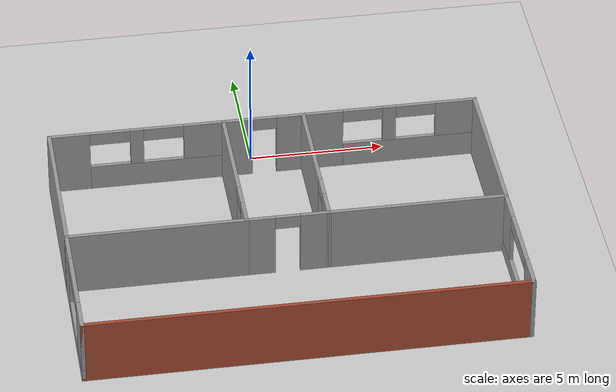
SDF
<sdf version="1.6">
 <world name="default">
  <model name="ground_plane">
   <static>1</static>
   <link name="link">
    <collision name="collision">
     <geometry><plane><normal>0 0 1</normal><size>100 100</size></plane></geometry>
     <surface>
      <contact><collide_bitmask>65535</collide_bitmask></contact>
      <friction><ode><mu>100</mu><mu2>50</mu2></ode></friction>
     </surface>
    </collision>
    <visual name="visual">
     <cast_shadows>0</cast_shadows>
     <geometry><plane><normal>0 0 1</normal><size>100 100</size></plane></geometry>
     <material>
      <script><uri>file://media/materials/scripts/gazebo.material</uri><name>Gazebo/Grey</name></script>
     </material>
    </visual>
   </link>
  </model>
  <model name="Building">
   <pose>0.34481 -6.36801 0 0 -0 0</pose>
   <link name="Wall_11">
    <pose>4.73315 5.49998 0 0 -0 0</pose>
    <visual name="Wall_11_Visual_0">
     <pose>-2.52909 0 1.25 0 -0 0</pose>
     <geometry><box><size>1.59183 0.15 2.5</size></box></geometry>
     <material>
      <script><uri>file://media/materials/scripts/gazebo.material</uri><name>Gazebo/Grey</name></script>
      <ambient>1 1 1 1</ambient>
     </material>
     <meta><layer>0</layer></meta>
    </visual>
    <collision name="Wall_11_Collision_0">
     <geometry><box><size>1.59183 0.15 2.5</size></box></geometry>
     <pose>-2.52909 0 1.25 0 -0 0</pose>
    </collision>
    <visual name="Wall_11_Visual_1">
     <pose>0.795914 0 0.5 0 -0 0</pose>
     <geometry><box><size>5.05817 0.15 1</size></box></geometry>
     <material>
      <script><uri>file://media/materials/scripts/gazebo.material</uri><name>Gazebo/Grey</name></script>
      <ambient>1 1 1 1</ambient>
     </material>
     <meta><layer>0</layer></meta>
    </visual>
    <collision name="Wall_11_Collision_1">
     <geometry><box><size>5.05817 0.15 1</size></box></geometry>
     <pose>0.795914 0 0.5 0 -0 0</pose>
    </collision>
    <visual name="Wall_11_Visual_2">
     <pose>0.018142 0 1.75 0 -0 0</pose>
     <geometry><box><size>0.502627 0.15 1.5</size></box></geometry>
     <material>
      <script><uri>file://media/materials/scripts/gazebo.material</uri><name>Gazebo/Grey</name></script>
      <ambient>1 1 1 1</ambient>
     </material>
     <meta><layer>0</layer></meta>
    </visual>
    <collision name="Wall_11_Collision_2">
     <geometry><box><size>0.502627 0.15 1.5</size></box></geometry>
     <pose>0.018142 0 1.75 0 -0 0</pose>
    </collision>
    <visual name="Wall_11_Visual_3">
     <pose>2.54723 0 1.75 0 -0 0</pose>
     <geometry><box><size>1.55554 0.15 1.5</size></box></geometry>
     <material>
      <script><uri>file://media/materials/scripts/gazebo.material</uri><name>Gazebo/Grey</name></script>
      <ambient>1 1 1 1</ambient>
     </material>
     <meta><layer>0</layer></meta>
    </visual>
    <collision name="Wall_11_Collision_3">
     <geometry><box><size>1.55554 0.15 1.5</size></box></geometry>
     <pose>2.54723 0 1.75 0 -0 0</pose>
    </collision>
    <visual name="Wall_11_Visual_4">
     <pose>-0.983172 0 2.25 0 -0 0</pose>
     <geometry><box><size>1.5 0.15 0.5</size></box></geometry>
     <material>
      <script><uri>file://media/materials/scripts/gazebo.material</uri><name>Gazebo/Grey</name></script>
      <ambient>1 1 1 1</ambient>
     </material>
     <meta><layer>0</layer></meta>
    </visual>
    <collision name="Wall_11_Collision_4">
     <geometry><box><size>1.5 0.15 0.5</size></box></geometry>
     <pose>-0.983172 0 2.25 0 -0 0</pose>
    </collision>
    <visual name="Wall_11_Visual_5">
     <pose>1.01946 0 2.25 0 -0 0</pose>
     <geometry><box><size>1.5 0.15 0.5</size></box></geometry>
     <material>
      <script><uri>file://media/materials/scripts/gazebo.material</uri><name>Gazebo/Grey</name></script>
      <ambient>1 1 1 1</ambient>
     </material>
     <meta><layer>0</layer></meta>
    </visual>
    <collision name="Wall_11_Collision_5">
     <geometry><box><size>1.5 0.15 0.5</size></box></geometry>
     <pose>1.01946 0 2.25 0 -0 0</pose>
    </collision>
   </link>
   <link name="Wall_12">
    <collision name="Wall_12_Collision">
     <geometry><box><size>6.15 0.15 2.5</size></box></geometry>
     <pose>0 0 1.25 0 -0 0</pose>
    </collision>
    <visual name="Wall_12_Visual">
     <pose>0 0 1.25 0 -0 0</pose>
     <geometry><box><size>6.15 0.15 2.5</size></box></geometry>
     <material>
      <script><uri>file://media/materials/scripts/gazebo.material</uri><name>Gazebo/Grey</name></script>
      <ambient>1 1 1 1</ambient>
     </material>
     <meta><layer>0</layer></meta>
    </visual>
    <pose>7.99829 2.49998 0 0 0 -1.57023</pose>
   </link>
   <link name="Wall_13">
    <collision name="Wall_13_Collision">
     <geometry><box><size>6.65 0.15 2.5</size></box></geometry>
     <pose>0 0 1.25 0 -0 0</pose>
    </collision>
    <visual name="Wall_13_Visual">
     <pose>0 0 1.25 0 -0 0</pose>
     <geometry><box><size>6.65 0.15 2.5</size></box></geometry>
     <material>
      <script><uri>file://media/materials/scripts/gazebo.material</uri><name>Gazebo/Grey</name></script>
      <ambient>1 1 1 1</ambient>
     </material>
     <meta><layer>0</layer></meta>
    </visual>
    <pose>4.74998 -0.500021 0 0 -0 3.14159</pose>
   </link>
   <link name="Wall_15">
    <pose>-8.00002 -3.00002 0 0 0 -1.5708</pose>
    <visual name="Wall_15_Visual_0">
     <pose>-1.9125 0 1.25 0 -0 0</pose>
     <geometry><box><size>1.325 0.15 2.5</size></box></geometry>
     <material>
      <script><uri>file://media/materials/scripts/gazebo.material</uri><name>Gazebo/Grey</name></script>
      <ambient>1 1 1 1</ambient>
     </material>
     <meta><layer>0</layer></meta>
    </visual>
    <collision name="Wall_15_Collision_0">
     <geometry><box><size>1.325 0.15 2.5</size></box></geometry>
     <pose>-1.9125 0 1.25 0 -0 0</pose>
    </collision>
    <visual name="Wall_15_Visual_1">
     <pose>0.6625 0 0.25 0 -0 0</pose>
     <geometry><box><size>3.825 0.15 0.5</size></box></geometry>
     <material>
      <script><uri>file://media/materials/scripts/gazebo.material</uri><name>Gazebo/Grey</name></script>
      <ambient>1 1 1 1</ambient>
     </material>
     <meta><layer>0</layer></meta>
    </visual>
    <collision name="Wall_15_Collision_1">
     <geometry><box><size>3.825 0.15 0.5</size></box></geometry>
     <pose>0.6625 0 0.25 0 -0 0</pose>
    </collision>
    <visual name="Wall_15_Visual_2">
     <pose>1.9125 0 1.5 0 -0 0</pose>
     <geometry><box><size>1.325 0.15 2</size></box></geometry>
     <material>
      <script><uri>file://media/materials/scripts/gazebo.material</uri><name>Gazebo/Grey</name></script>
      <ambient>1 1 1 1</ambient>
     </material>
     <meta><layer>0</layer></meta>
    </visual>
    <collision name="Wall_15_Collision_2">
     <geometry><box><size>1.325 0.15 2</size></box></geometry>
     <pose>1.9125 0 1.5 0 -0 0</pose>
    </collision>
    <visual name="Wall_15_Visual_3">
     <pose>0 0 2.25 0 -0 0</pose>
     <geometry><box><size>2.5 0.15 0.5</size></box></geometry>
     <material>
      <script><uri>file://media/materials/scripts/gazebo.material</uri><name>Gazebo/Grey</name></script>
      <ambient>1 1 1 1</ambient>
     </material>
     <meta><layer>0</layer></meta>
    </visual>
    <collision name="Wall_15_Collision_3">
     <geometry><box><size>2.5 0.15 0.5</size></box></geometry>
     <pose>0 0 2.25 0 -0 0</pose>
    </collision>
   </link>
   <link name="Wall_16">
    <collision name="Wall_16_Collision">
     <geometry><box><size>16.15 0.15 2.5</size></box></geometry>
     <pose>0 0 1.25 0 -0 0</pose>
    </collision>
    <visual name="Wall_16_Visual">
     <pose>0 0 1.25 0 -0 0</pose>
     <geometry><box><size>16.15 0.15 2.5</size></box></geometry>
     <material>
      <script><uri>file://media/materials/scripts/gazebo.material</uri><name>Gazebo/Bricks</name></script>
      <ambient>1 1 1 1</ambient>
     </material>
     <meta><layer>0</layer></meta>
    </visual>
    <pose>-2.1e-05 -5.50002 0 0 -0 0</pose>
   </link>
   <link name="Wall_17">
    <pose>7.99998 -3.00002 0 0 -0 1.5708</pose>
    <visual name="Wall_17_Visual_0">
     <pose>-1.9125 0 1.25 0 -0 0</pose>
     <geometry><box><size>1.325 0.15 2.5</size></box></geometry>
     <material>
      <script><uri>file://media/materials/scripts/gazebo.material</uri><name>Gazebo/Grey</name></script>
      <ambient>1 1 1 1</ambient>
     </material>
     <meta><layer>0</layer></meta>
    </visual>
    <collision name="Wall_17_Collision_0">
     <geometry><box><size>1.325 0.15 2.5</size></box></geometry>
     <pose>-1.9125 0 1.25 0 -0 0</pose>
    </collision>
    <visual name="Wall_17_Visual_1">
     <pose>0.6625 0 0.25 0 -0 0</pose>
     <geometry><box><size>3.825 0.15 0.5</size></box></geometry>
     <material>
      <script><uri>file://media/materials/scripts/gazebo.material</uri><name>Gazebo/Grey</name></script>
      <ambient>1 1 1 1</ambient>
     </material>
     <meta><layer>0</layer></meta>
    </visual>
    <collision name="Wall_17_Collision_1">
     <geometry><box><size>3.825 0.15 0.5</size></box></geometry>
     <pose>0.6625 0 0.25 0 -0 0</pose>
    </collision>
    <visual name="Wall_17_Visual_2">
     <pose>1.9125 0 1.5 0 -0 0</pose>
     <geometry><box><size>1.325 0.15 2</size></box></geometry>
     <material>
      <script><uri>file://media/materials/scripts/gazebo.material</uri><name>Gazebo/Grey</name></script>
      <ambient>1 1 1 1</ambient>
     </material>
     <meta><layer>0</layer></meta>
    </visual>
    <collision name="Wall_17_Collision_2">
     <geometry><box><size>1.325 0.15 2</size></box></geometry>
     <pose>1.9125 0 1.5 0 -0 0</pose>
    </collision>
    <visual name="Wall_17_Visual_3">
     <pose>0 0 2.25 0 -0 0</pose>
     <geometry><box><size>2.5 0.15 0.5</size></box></geometry>
     <material>
      <script><uri>file://media/materials/scripts/gazebo.material</uri><name>Gazebo/Grey</name></script>
      <ambient>1 1 1 1</ambient>
     </material>
     <meta><layer>0</layer></meta>
    </visual>
    <collision name="Wall_17_Collision_3">
     <geometry><box><size>2.5 0.15 0.5</size></box></geometry>
     <pose>0 0 2.25 0 -0 0</pose>
    </collision>
   </link>
   <link name="Wall_2">
    <pose>-4.75002 5.49998 0 0 -0 0</pose>
    <visual name="Wall_2_Visual_0">
     <pose>-2.5375 0 1.25 0 -0 0</pose>
     <geometry><box><size>1.575 0.15 2.5</size></box></geometry>
     <material>
      <script><uri>file://media/materials/scripts/gazebo.material</uri><name>Gazebo/Grey</name></script>
      <ambient>1 1 1 1</ambient>
     </material>
     <meta><layer>0</layer></meta>
    </visual>
    <collision name="Wall_2_Collision_0">
     <geometry><box><size>1.575 0.15 2.5</size></box></geometry>
     <pose>-2.5375 0 1.25 0 -0 0</pose>
    </collision>
    <visual name="Wall_2_Visual_1">
     <pose>0.7875 0 0.5 0 -0 0</pose>
     <geometry><box><size>5.075 0.15 1</size></box></geometry>
     <material>
      <script><uri>file://media/materials/scripts/gazebo.material</uri><name>Gazebo/Grey</name></script>
      <ambient>1 1 1 1</ambient>
     </material>
     <meta><layer>0</layer></meta>
    </visual>
    <collision name="Wall_2_Collision_1">
     <geometry><box><size>5.075 0.15 1</size></box></geometry>
     <pose>0.7875 0 0.5 0 -0 0</pose>
    </collision>
    <visual name="Wall_2_Visual_2">
     <pose>0 0 1.75 0 -0 0</pose>
     <geometry><box><size>0.5 0.15 1.5</size></box></geometry>
     <material>
      <script><uri>file://media/materials/scripts/gazebo.material</uri><name>Gazebo/Grey</name></script>
      <ambient>1 1 1 1</ambient>
     </material>
     <meta><layer>0</layer></meta>
    </visual>
    <collision name="Wall_2_Collision_2">
     <geometry><box><size>0.5 0.15 1.5</size></box></geometry>
     <pose>0 0 1.75 0 -0 0</pose>
    </collision>
    <visual name="Wall_2_Visual_3">
     <pose>2.5375 0 1.75 0 -0 0</pose>
     <geometry><box><size>1.575 0.15 1.5</size></box></geometry>
     <material>
      <script><uri>file://media/materials/scripts/gazebo.material</uri><name>Gazebo/Grey</name></script>
      <ambient>1 1 1 1</ambient>
     </material>
     <meta><layer>0</layer></meta>
    </visual>
    <collision name="Wall_2_Collision_3">
     <geometry><box><size>1.575 0.15 1.5</size></box></geometry>
     <pose>2.5375 0 1.75 0 -0 0</pose>
    </collision>
    <visual name="Wall_2_Visual_4">
     <pose>-1 0 2.25 0 -0 0</pose>
     <geometry><box><size>1.5 0.15 0.5</size></box></geometry>
     <material>
      <script><uri>file://media/materials/scripts/gazebo.material</uri><name>Gazebo/Grey</name></script>
      <ambient>1 1 1 1</ambient>
     </material>
     <meta><layer>0</layer></meta>
    </visual>
    <collision name="Wall_2_Collision_4">
     <geometry><box><size>1.5 0.15 0.5</size></box></geometry>
     <pose>-1 0 2.25 0 -0 0</pose>
    </collision>
    <visual name="Wall_2_Visual_5">
     <pose>1 0 2.25 0 -0 0</pose>
     <geometry><box><size>1.5 0.15 0.5</size></box></geometry>
     <material>
      <script><uri>file://media/materials/scripts/gazebo.material</uri><name>Gazebo/Grey</name></script>
      <ambient>1 1 1 1</ambient>
     </material>
     <meta><layer>0</layer></meta>
    </visual>
    <collision name="Wall_2_Collision_5">
     <geometry><box><size>1.5 0.15 0.5</size></box></geometry>
     <pose>1 0 2.25 0 -0 0</pose>
    </collision>
   </link>
   <link name="Wall_3">
    <pose>-1.50002 2.49998 0 0 0 -1.5708</pose>
    <visual name="Wall_3_Visual_0">
     <pose>-1.0125 0 1.25 0 -0 0</pose>
     <geometry><box><size>4.125 0.15 2.5</size></box></geometry>
     <material>
      <script><uri>file://media/materials/scripts/gazebo.material</uri><name>Gazebo/Grey</name></script>
      <ambient>1 1 1 1</ambient>
     </material>
     <meta><layer>0</layer></meta>
    </visual>
    <collision name="Wall_3_Collision_0">
     <geometry><box><size>4.125 0.15 2.5</size></box></geometry>
     <pose>-1.0125 0 1.25 0 -0 0</pose>
    </collision>
    <visual name="Wall_3_Visual_1">
     <pose>2.5125 0 1.25 0 -0 0</pose>
     <geometry><box><size>1.125 0.15 2.5</size></box></geometry>
     <material>
      <script><uri>file://media/materials/scripts/gazebo.material</uri><name>Gazebo/Grey</name></script>
      <ambient>1 1 1 1</ambient>
     </material>
     <meta><layer>0</layer></meta>
    </visual>
    <collision name="Wall_3_Collision_1">
     <geometry><box><size>1.125 0.15 2.5</size></box></geometry>
     <pose>2.5125 0 1.25 0 -0 0</pose>
    </collision>
    <visual name="Wall_3_Visual_2">
     <pose>1.5 0 2.25 0 -0 0</pose>
     <geometry><box><size>0.9 0.15 0.5</size></box></geometry>
     <material>
      <script><uri>file://media/materials/scripts/gazebo.material</uri><name>Gazebo/Grey</name></script>
      <ambient>1 1 1 1</ambient>
     </material>
     <meta><layer>0</layer></meta>
    </visual>
    <collision name="Wall_3_Collision_2">
     <geometry><box><size>0.9 0.15 0.5</size></box></geometry>
     <pose>1.5 0 2.25 0 -0 0</pose>
    </collision>
   </link>
   <link name="Wall_4">
    <collision name="Wall_4_Collision">
     <geometry><box><size>6.65 0.15 2.5</size></box></geometry>
     <pose>0 0 1.25 0 -0 0</pose>
    </collision>
    <visual name="Wall_4_Visual">
     <pose>0 0 1.25 0 -0 0</pose>
     <geometry><box><size>6.65 0.15 2.5</size></box></geometry>
     <material>
      <script><uri>file://media/materials/scripts/gazebo.material</uri><name>Gazebo/Grey</name></script>
      <ambient>1 1 1 1</ambient>
     </material>
     <meta><layer>0</layer></meta>
    </visual>
    <pose>-4.75002 -0.500021 0 0 -0 3.14159</pose>
   </link>
   <link name="Wall_5">
    <collision name="Wall_5_Collision">
     <geometry><box><size>6.15 0.15 2.5</size></box></geometry>
     <pose>0 0 1.25 0 -0 0</pose>
    </collision>
    <visual name="Wall_5_Visual">
     <pose>0 0 1.25 0 -0 0</pose>
     <geometry><box><size>6.15 0.15 2.5</size></box></geometry>
     <material>
      <script><uri>file://media/materials/scripts/gazebo.material</uri><name>Gazebo/Grey</name></script>
      <ambient>1 1 1 1</ambient>
     </material>
     <meta><layer>0</layer></meta>
    </visual>
    <pose>-8.00002 2.49998 0 0 -0 1.5708</pose>
   </link>
   <link name="Wall_7">
    <pose>-0.001709 5.49998 0 0 -0 0</pose>
    <visual name="Wall_7_Visual_0">
     <pose>-0.995044 0 1.25 0 -0 0</pose>
     <geometry><box><size>1.15654 0.15 2.5</size></box></geometry>
     <material>
      <script><uri>file://media/materials/scripts/gazebo.material</uri><name>Gazebo/Grey</name></script>
      <ambient>1 1 1 1</ambient>
     </material>
     <meta><layer>0</layer></meta>
    </visual>
    <collision name="Wall_7_Collision_0">
     <geometry><box><size>1.15654 0.15 2.5</size></box></geometry>
     <pose>-0.995044 0 1.25 0 -0 0</pose>
    </collision>
    <visual name="Wall_7_Visual_1">
     <pose>1.02827 0 1.25 0 -0 0</pose>
     <geometry><box><size>1.09009 0.15 2.5</size></box></geometry>
     <material>
      <script><uri>file://media/materials/scripts/gazebo.material</uri><name>Gazebo/Grey</name></script>
      <ambient>1 1 1 1</ambient>
     </material>
     <meta><layer>0</layer></meta>
    </visual>
    <collision name="Wall_7_Collision_1">
     <geometry><box><size>1.09009 0.15 2.5</size></box></geometry>
     <pose>1.02827 0 1.25 0 -0 0</pose>
    </collision>
    <visual name="Wall_7_Visual_2">
     <pose>0.033224 0 2.25 0 -0 0</pose>
     <geometry><box><size>0.9 0.15 0.5</size></box></geometry>
     <material>
      <script><uri>file://media/materials/scripts/gazebo.material</uri><name>Gazebo/Grey</name></script>
      <ambient>1 1 1 1</ambient>
     </material>
     <meta><layer>0</layer></meta>
    </visual>
    <collision name="Wall_7_Collision_2">
     <geometry><box><size>0.9 0.15 0.5</size></box></geometry>
     <pose>0.033224 0 2.25 0 -0 0</pose>
    </collision>
   </link>
   <link name="Wall_8">
    <pose>1.49829 2.49998 0 0 0 -1.57023</pose>
    <visual name="Wall_8_Visual_0">
     <pose>-1.03537 0 1.25 0 -0 0</pose>
     <geometry><box><size>4.07927 0.15 2.5</size></box></geometry>
     <material>
      <script><uri>file://media/materials/scripts/gazebo.material</uri><name>Gazebo/Grey</name></script>
      <ambient>1 1 1 1</ambient>
     </material>
     <meta><layer>0</layer></meta>
    </visual>
    <collision name="Wall_8_Collision_0">
     <geometry><box><size>4.07927 0.15 2.5</size></box></geometry>
     <pose>-1.03537 0 1.25 0 -0 0</pose>
    </collision>
    <visual name="Wall_8_Visual_1">
     <pose>2.48963 0 1.25 0 -0 0</pose>
     <geometry><box><size>1.17074 0.15 2.5</size></box></geometry>
     <material>
      <script><uri>file://media/materials/scripts/gazebo.material</uri><name>Gazebo/Grey</name></script>
      <ambient>1 1 1 1</ambient>
     </material>
     <meta><layer>0</layer></meta>
    </visual>
    <collision name="Wall_8_Collision_1">
     <geometry><box><size>1.17074 0.15 2.5</size></box></geometry>
     <pose>2.48963 0 1.25 0 -0 0</pose>
    </collision>
    <visual name="Wall_8_Visual_2">
     <pose>1.45426 0 2.25 0 -0 0</pose>
     <geometry><box><size>0.9 0.15 0.5</size></box></geometry>
     <material>
      <script><uri>file://media/materials/scripts/gazebo.material</uri><name>Gazebo/Grey</name></script>
      <ambient>1 1 1 1</ambient>
     </material>
     <meta><layer>0</layer></meta>
    </visual>
    <collision name="Wall_8_Collision_2">
     <geometry><box><size>0.9 0.15 0.5</size></box></geometry>
     <pose>1.45426 0 2.25 0 -0 0</pose>
    </collision>
   </link>
   <link name="Wall_9">
    <pose>-2.1e-05 -0.500021 0 0 -0 3.14159</pose>
    <visual name="Wall_9_Visual_0">
     <pose>-1.0125 0 1.25 0 -0 0</pose>
     <geometry><box><size>1.125 0.15 2.5</size></box></geometry>
     <material>
      <script><uri>file://media/materials/scripts/gazebo.material</uri><name>Gazebo/Grey</name></script>
      <ambient>1 1 1 1</ambient>
     </material>
     <meta><layer>0</layer></meta>
    </visual>
    <collision name="Wall_9_Collision_0">
     <geometry><box><size>1.125 0.15 2.5</size></box></geometry>
     <pose>-1.0125 0 1.25 0 -0 0</pose>
    </collision>
    <visual name="Wall_9_Visual_1">
     <pose>1.0125 0 1.25 0 -0 0</pose>
     <geometry><box><size>1.125 0.15 2.5</size></box></geometry>
     <material>
      <script><uri>file://media/materials/scripts/gazebo.material</uri><name>Gazebo/Grey</name></script>
      <ambient>1 1 1 1</ambient>
     </material>
     <meta><layer>0</layer></meta>
    </visual>
    <collision name="Wall_9_Collision_1">
     <geometry><box><size>1.125 0.15 2.5</size></box></geometry>
     <pose>1.0125 0 1.25 0 -0 0</pose>
    </collision>
    <visual name="Wall_9_Visual_2">
     <pose>0 0 2.25 0 -0 0</pose>
     <geometry><box><size>0.9 0.15 0.5</size></box></geometry>
     <material>
      <script><uri>file://media/materials/scripts/gazebo.material</uri><name>Gazebo/Grey</name></script>
      <ambient>1 1 1 1</ambient>
     </material>
     <meta><layer>0</layer></meta>
    </visual>
    <collision name="Wall_9_Collision_2">
     <geometry><box><size>0.9 0.15 0.5</size></box></geometry>
     <pose>0 0 2.25 0 -0 0</pose>
    </collision>
   </link>
   <static>1</static>
  </model>
 </world>
</sdf>
